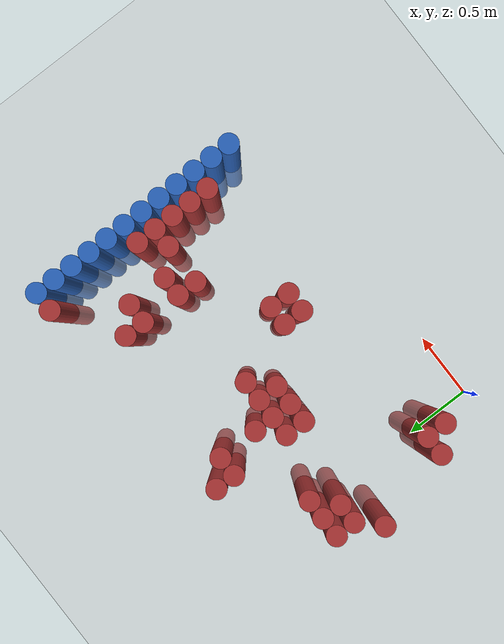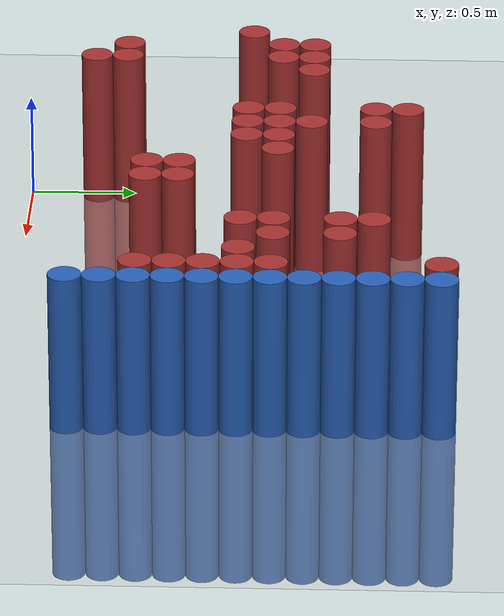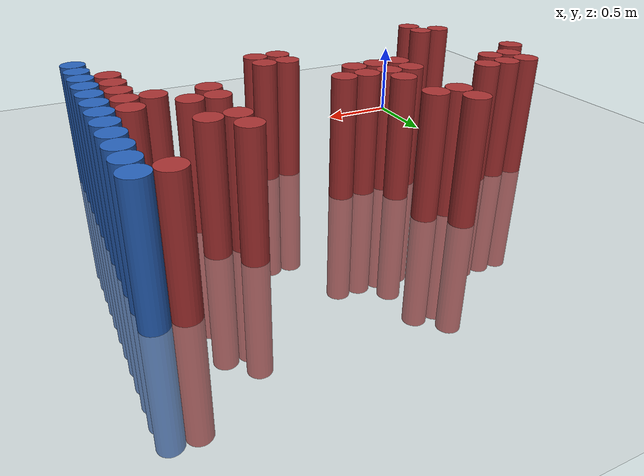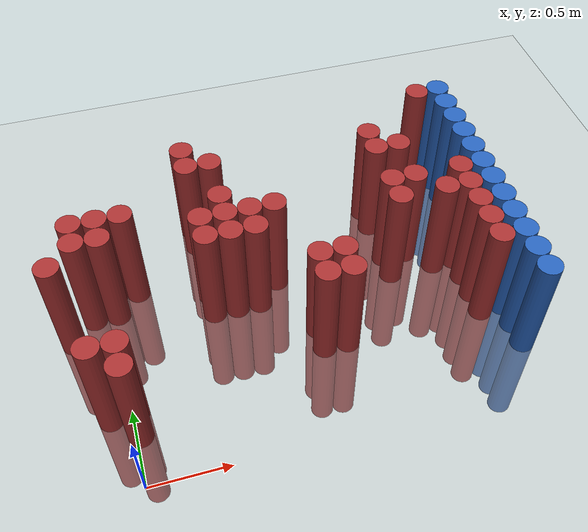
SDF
<sdf version="1.6">
 <world name="default">
  <model name="ground_plane">
   <static>1</static>
   <link name="link">
    <collision name="collision">
     <geometry><plane><normal>0 0 1</normal><size>100 100</size></plane></geometry>
     <surface><friction><ode><mu>100</mu><mu2>50</mu2></ode></friction></surface>
    </collision>
    <visual name="visual">
     <cast_shadows>0</cast_shadows>
     <geometry><plane><normal>0 0 1</normal><size>100 100</size></plane></geometry>
     <material>
      <script><uri>file://media/materials/scripts/gazebo.material</uri><name>Gazebo/Grey</name></script>
     </material>
    </visual>
   </link>
  </model>
  <model name="unit_cylinder_147">
   <static>1</static>
   <pose>-0.275000 1.075000 0.000000 0.000000 0.000000 0.000000</pose>
   <link name="link">
    <inertial>
     <mass>1</mass>
     <inertia><ixx>0.145833</ixx><ixy>0</ixy><ixz>0</ixz><iyy>0.145833</iyy><iyz>0</iyz><izz>0.125</izz></inertia>
    </inertial>
    <collision name="collision">
     <geometry><cylinder><radius>0.075000</radius><length>1.5</length></cylinder></geometry>
    </collision>
    <visual name="visual">
     <geometry><cylinder><radius>0.075000</radius><length>1.5</length></cylinder></geometry>
     <material>
      <ambient>0.648000 0.192000 0.192000 1</ambient>
      <diffuse>0.648000 0.192000 0.192000 1</diffuse>
     </material>
     <material>
      <script><name>Gazebo/Grey</name><uri>file://media/materials/scripts/gazebo.material</uri></script>
     </material>
    </visual>
   </link>
  </model>
  <model name="unit_cylinder_151">
   <static>1</static>
   <pose>-0.125000 0.475000 0.000000 0.000000 0.000000 0.000000</pose>
   <link name="link">
    <inertial>
     <mass>1</mass>
     <inertia><ixx>0.145833</ixx><ixy>0</ixy><ixz>0</ixz><iyy>0.145833</iyy><iyz>0</iyz><izz>0.125</izz></inertia>
    </inertial>
    <collision name="collision">
     <geometry><cylinder><radius>0.075000</radius><length>1.5</length></cylinder></geometry>
    </collision>
    <visual name="visual">
     <geometry><cylinder><radius>0.075000</radius><length>1.5</length></cylinder></geometry>
     <material>
      <ambient>0.648000 0.192000 0.192000 1</ambient>
      <diffuse>0.648000 0.192000 0.192000 1</diffuse>
     </material>
     <material>
      <script><name>Gazebo/Grey</name><uri>file://media/materials/scripts/gazebo.material</uri></script>
     </material>
    </visual>
   </link>
  </model>
  <model name="unit_cylinder_152">
   <static>1</static>
   <pose>-0.125000 1.225000 0.000000 0.000000 0.000000 0.000000</pose>
   <link name="link">
    <inertial>
     <mass>1</mass>
     <inertia><ixx>0.145833</ixx><ixy>0</ixy><ixz>0</ixz><iyy>0.145833</iyy><iyz>0</iyz><izz>0.125</izz></inertia>
    </inertial>
    <collision name="collision">
     <geometry><cylinder><radius>0.075000</radius><length>1.5</length></cylinder></geometry>
    </collision>
    <visual name="visual">
     <geometry><cylinder><radius>0.075000</radius><length>1.5</length></cylinder></geometry>
     <material>
      <ambient>0.648000 0.192000 0.192000 1</ambient>
      <diffuse>0.648000 0.192000 0.192000 1</diffuse>
     </material>
     <material>
      <script><name>Gazebo/Grey</name><uri>file://media/materials/scripts/gazebo.material</uri></script>
     </material>
    </visual>
   </link>
  </model>
  <model name="unit_cylinder_153">
   <static>1</static>
   <pose>-0.125000 1.375000 0.000000 0.000000 0.000000 0.000000</pose>
   <link name="link">
    <inertial>
     <mass>1</mass>
     <inertia><ixx>0.145833</ixx><ixy>0</ixy><ixz>0</ixz><iyy>0.145833</iyy><iyz>0</iyz><izz>0.125</izz></inertia>
    </inertial>
    <collision name="collision">
     <geometry><cylinder><radius>0.075000</radius><length>1.5</length></cylinder></geometry>
    </collision>
    <visual name="visual">
     <geometry><cylinder><radius>0.075000</radius><length>1.5</length></cylinder></geometry>
     <material>
      <ambient>0.648000 0.192000 0.192000 1</ambient>
      <diffuse>0.648000 0.192000 0.192000 1</diffuse>
     </material>
     <material>
      <script><name>Gazebo/Grey</name><uri>file://media/materials/scripts/gazebo.material</uri></script>
     </material>
    </visual>
   </link>
  </model>
  <model name="unit_cylinder_155">
   <static>1</static>
   <pose>0.025000 0.325000 0.000000 0.000000 0.000000 0.000000</pose>
   <link name="link">
    <inertial>
     <mass>1</mass>
     <inertia><ixx>0.145833</ixx><ixy>0</ixy><ixz>0</ixz><iyy>0.145833</iyy><iyz>0</iyz><izz>0.125</izz></inertia>
    </inertial>
    <collision name="collision">
     <geometry><cylinder><radius>0.075000</radius><length>1.5</length></cylinder></geometry>
    </collision>
    <visual name="visual">
     <geometry><cylinder><radius>0.075000</radius><length>1.5</length></cylinder></geometry>
     <material>
      <ambient>0.648000 0.192000 0.192000 1</ambient>
      <diffuse>0.648000 0.192000 0.192000 1</diffuse>
     </material>
     <material>
      <script><name>Gazebo/Grey</name><uri>file://media/materials/scripts/gazebo.material</uri></script>
     </material>
    </visual>
   </link>
  </model>
  <model name="unit_cylinder_156">
   <static>1</static>
   <pose>0.025000 0.475000 0.000000 0.000000 0.000000 0.000000</pose>
   <link name="link">
    <inertial>
     <mass>1</mass>
     <inertia><ixx>0.145833</ixx><ixy>0</ixy><ixz>0</ixz><iyy>0.145833</iyy><iyz>0</iyz><izz>0.125</izz></inertia>
    </inertial>
    <collision name="collision">
     <geometry><cylinder><radius>0.075000</radius><length>1.5</length></cylinder></geometry>
    </collision>
    <visual name="visual">
     <geometry><cylinder><radius>0.075000</radius><length>1.5</length></cylinder></geometry>
     <material>
      <ambient>0.648000 0.192000 0.192000 1</ambient>
      <diffuse>0.648000 0.192000 0.192000 1</diffuse>
     </material>
     <material>
      <script><name>Gazebo/Grey</name><uri>file://media/materials/scripts/gazebo.material</uri></script>
     </material>
    </visual>
   </link>
  </model>
  <model name="unit_cylinder_157">
   <static>1</static>
   <pose>0.025000 1.225000 0.000000 0.000000 0.000000 0.000000</pose>
   <link name="link">
    <inertial>
     <mass>1</mass>
     <inertia><ixx>0.145833</ixx><ixy>0</ixy><ixz>0</ixz><iyy>0.145833</iyy><iyz>0</iyz><izz>0.125</izz></inertia>
    </inertial>
    <collision name="collision">
     <geometry><cylinder><radius>0.075000</radius><length>1.5</length></cylinder></geometry>
    </collision>
    <visual name="visual">
     <geometry><cylinder><radius>0.075000</radius><length>1.5</length></cylinder></geometry>
     <material>
      <ambient>0.648000 0.192000 0.192000 1</ambient>
      <diffuse>0.648000 0.192000 0.192000 1</diffuse>
     </material>
     <material>
      <script><name>Gazebo/Grey</name><uri>file://media/materials/scripts/gazebo.material</uri></script>
     </material>
    </visual>
   </link>
  </model>
  <model name="unit_cylinder_158">
   <static>1</static>
   <pose>0.025000 1.375000 0.000000 0.000000 0.000000 0.000000</pose>
   <link name="link">
    <inertial>
     <mass>1</mass>
     <inertia><ixx>0.145833</ixx><ixy>0</ixy><ixz>0</ixz><iyy>0.145833</iyy><iyz>0</iyz><izz>0.125</izz></inertia>
    </inertial>
    <collision name="collision">
     <geometry><cylinder><radius>0.075000</radius><length>1.5</length></cylinder></geometry>
    </collision>
    <visual name="visual">
     <geometry><cylinder><radius>0.075000</radius><length>1.5</length></cylinder></geometry>
     <material>
      <ambient>0.648000 0.192000 0.192000 1</ambient>
      <diffuse>0.648000 0.192000 0.192000 1</diffuse>
     </material>
     <material>
      <script><name>Gazebo/Grey</name><uri>file://media/materials/scripts/gazebo.material</uri></script>
     </material>
    </visual>
   </link>
  </model>
  <model name="unit_cylinder_159">
   <static>1</static>
   <pose>0.175000 1.375000 0.000000 0.000000 0.000000 0.000000</pose>
   <link name="link">
    <inertial>
     <mass>1</mass>
     <inertia><ixx>0.145833</ixx><ixy>0</ixy><ixz>0</ixz><iyy>0.145833</iyy><iyz>0</iyz><izz>0.125</izz></inertia>
    </inertial>
    <collision name="collision">
     <geometry><cylinder><radius>0.075000</radius><length>1.5</length></cylinder></geometry>
    </collision>
    <visual name="visual">
     <geometry><cylinder><radius>0.075000</radius><length>1.5</length></cylinder></geometry>
     <material>
      <ambient>0.648000 0.192000 0.192000 1</ambient>
      <diffuse>0.648000 0.192000 0.192000 1</diffuse>
     </material>
     <material>
      <script><name>Gazebo/Grey</name><uri>file://media/materials/scripts/gazebo.material</uri></script>
     </material>
    </visual>
   </link>
  </model>
  <model name="unit_cylinder_160">
   <static>1</static>
   <pose>0.625000 1.075000 0.000000 0.000000 0.000000 0.000000</pose>
   <link name="link">
    <inertial>
     <mass>1</mass>
     <inertia><ixx>0.145833</ixx><ixy>0</ixy><ixz>0</ixz><iyy>0.145833</iyy><iyz>0</iyz><izz>0.125</izz></inertia>
    </inertial>
    <collision name="collision">
     <geometry><cylinder><radius>0.075000</radius><length>1.5</length></cylinder></geometry>
    </collision>
    <visual name="visual">
     <geometry><cylinder><radius>0.075000</radius><length>1.5</length></cylinder></geometry>
     <material>
      <ambient>0.648000 0.192000 0.192000 1</ambient>
      <diffuse>0.648000 0.192000 0.192000 1</diffuse>
     </material>
     <material>
      <script><name>Gazebo/Grey</name><uri>file://media/materials/scripts/gazebo.material</uri></script>
     </material>
    </visual>
   </link>
  </model>
  <model name="unit_cylinder_161">
   <static>1</static>
   <pose>0.625000 1.225000 0.000000 0.000000 0.000000 0.000000</pose>
   <link name="link">
    <inertial>
     <mass>1</mass>
     <inertia><ixx>0.145833</ixx><ixy>0</ixy><ixz>0</ixz><iyy>0.145833</iyy><iyz>0</iyz><izz>0.125</izz></inertia>
    </inertial>
    <collision name="collision">
     <geometry><cylinder><radius>0.075000</radius><length>1.5</length></cylinder></geometry>
    </collision>
    <visual name="visual">
     <geometry><cylinder><radius>0.075000</radius><length>1.5</length></cylinder></geometry>
     <material>
      <ambient>0.648000 0.192000 0.192000 1</ambient>
      <diffuse>0.648000 0.192000 0.192000 1</diffuse>
     </material>
     <material>
      <script><name>Gazebo/Grey</name><uri>file://media/materials/scripts/gazebo.material</uri></script>
     </material>
    </visual>
   </link>
  </model>
  <model name="unit_cylinder_162">
   <static>1</static>
   <pose>0.625000 1.675000 0.000000 0.000000 0.000000 0.000000</pose>
   <link name="link">
    <inertial>
     <mass>1</mass>
     <inertia><ixx>0.145833</ixx><ixy>0</ixy><ixz>0</ixz><iyy>0.145833</iyy><iyz>0</iyz><izz>0.125</izz></inertia>
    </inertial>
    <collision name="collision">
     <geometry><cylinder><radius>0.075000</radius><length>1.5</length></cylinder></geometry>
    </collision>
    <visual name="visual">
     <geometry><cylinder><radius>0.075000</radius><length>1.5</length></cylinder></geometry>
     <material>
      <ambient>0.648000 0.192000 0.192000 1</ambient>
      <diffuse>0.648000 0.192000 0.192000 1</diffuse>
     </material>
     <material>
      <script><name>Gazebo/Grey</name><uri>file://media/materials/scripts/gazebo.material</uri></script>
     </material>
    </visual>
   </link>
  </model>
  <model name="unit_cylinder_163">
   <static>1</static>
   <pose>0.625000 1.825000 0.000000 0.000000 0.000000 0.000000</pose>
   <link name="link">
    <inertial>
     <mass>1</mass>
     <inertia><ixx>0.145833</ixx><ixy>0</ixy><ixz>0</ixz><iyy>0.145833</iyy><iyz>0</iyz><izz>0.125</izz></inertia>
    </inertial>
    <collision name="collision">
     <geometry><cylinder><radius>0.075000</radius><length>1.5</length></cylinder></geometry>
    </collision>
    <visual name="visual">
     <geometry><cylinder><radius>0.075000</radius><length>1.5</length></cylinder></geometry>
     <material>
      <ambient>0.648000 0.192000 0.192000 1</ambient>
      <diffuse>0.648000 0.192000 0.192000 1</diffuse>
     </material>
     <material>
      <script><name>Gazebo/Grey</name><uri>file://media/materials/scripts/gazebo.material</uri></script>
     </material>
    </visual>
   </link>
  </model>
  <model name="unit_cylinder_166">
   <static>1</static>
   <pose>0.775000 1.075000 0.000000 0.000000 0.000000 0.000000</pose>
   <link name="link">
    <inertial>
     <mass>1</mass>
     <inertia><ixx>0.145833</ixx><ixy>0</ixy><ixz>0</ixz><iyy>0.145833</iyy><iyz>0</iyz><izz>0.125</izz></inertia>
    </inertial>
    <collision name="collision">
     <geometry><cylinder><radius>0.075000</radius><length>1.5</length></cylinder></geometry>
    </collision>
    <visual name="visual">
     <geometry><cylinder><radius>0.075000</radius><length>1.5</length></cylinder></geometry>
     <material>
      <ambient>0.648000 0.192000 0.192000 1</ambient>
      <diffuse>0.648000 0.192000 0.192000 1</diffuse>
     </material>
     <material>
      <script><name>Gazebo/Grey</name><uri>file://media/materials/scripts/gazebo.material</uri></script>
     </material>
    </visual>
   </link>
  </model>
  <model name="unit_cylinder_167">
   <static>1</static>
   <pose>0.775000 1.225000 0.000000 0.000000 0.000000 0.000000</pose>
   <link name="link">
    <inertial>
     <mass>1</mass>
     <inertia><ixx>0.145833</ixx><ixy>0</ixy><ixz>0</ixz><iyy>0.145833</iyy><iyz>0</iyz><izz>0.125</izz></inertia>
    </inertial>
    <collision name="collision">
     <geometry><cylinder><radius>0.075000</radius><length>1.5</length></cylinder></geometry>
    </collision>
    <visual name="visual">
     <geometry><cylinder><radius>0.075000</radius><length>1.5</length></cylinder></geometry>
     <material>
      <ambient>0.648000 0.192000 0.192000 1</ambient>
      <diffuse>0.648000 0.192000 0.192000 1</diffuse>
     </material>
     <material>
      <script><name>Gazebo/Grey</name><uri>file://media/materials/scripts/gazebo.material</uri></script>
     </material>
    </visual>
   </link>
  </model>
  <model name="unit_cylinder_168">
   <static>1</static>
   <pose>0.775000 1.375000 0.000000 0.000000 0.000000 0.000000</pose>
   <link name="link">
    <inertial>
     <mass>1</mass>
     <inertia><ixx>0.145833</ixx><ixy>0</ixy><ixz>0</ixz><iyy>0.145833</iyy><iyz>0</iyz><izz>0.125</izz></inertia>
    </inertial>
    <collision name="collision">
     <geometry><cylinder><radius>0.075000</radius><length>1.5</length></cylinder></geometry>
    </collision>
    <visual name="visual">
     <geometry><cylinder><radius>0.075000</radius><length>1.5</length></cylinder></geometry>
     <material>
      <ambient>0.648000 0.192000 0.192000 1</ambient>
      <diffuse>0.648000 0.192000 0.192000 1</diffuse>
     </material>
     <material>
      <script><name>Gazebo/Grey</name><uri>file://media/materials/scripts/gazebo.material</uri></script>
     </material>
    </visual>
   </link>
  </model>
  <model name="unit_cylinder_169">
   <static>1</static>
   <pose>0.775000 1.675000 0.000000 0.000000 0.000000 0.000000</pose>
   <link name="link">
    <inertial>
     <mass>1</mass>
     <inertia><ixx>0.145833</ixx><ixy>0</ixy><ixz>0</ixz><iyy>0.145833</iyy><iyz>0</iyz><izz>0.125</izz></inertia>
    </inertial>
    <collision name="collision">
     <geometry><cylinder><radius>0.075000</radius><length>1.5</length></cylinder></geometry>
    </collision>
    <visual name="visual">
     <geometry><cylinder><radius>0.075000</radius><length>1.5</length></cylinder></geometry>
     <material>
      <ambient>0.648000 0.192000 0.192000 1</ambient>
      <diffuse>0.648000 0.192000 0.192000 1</diffuse>
     </material>
     <material>
      <script><name>Gazebo/Grey</name><uri>file://media/materials/scripts/gazebo.material</uri></script>
     </material>
    </visual>
   </link>
  </model>
  <model name="unit_cylinder_174">
   <static>1</static>
   <pose>0.925000 1.075000 0.000000 0.000000 0.000000 0.000000</pose>
   <link name="link">
    <inertial>
     <mass>1</mass>
     <inertia><ixx>0.145833</ixx><ixy>0</ixy><ixz>0</ixz><iyy>0.145833</iyy><iyz>0</iyz><izz>0.125</izz></inertia>
    </inertial>
    <collision name="collision">
     <geometry><cylinder><radius>0.075000</radius><length>1.5</length></cylinder></geometry>
    </collision>
    <visual name="visual">
     <geometry><cylinder><radius>0.075000</radius><length>1.5</length></cylinder></geometry>
     <material>
      <ambient>0.648000 0.192000 0.192000 1</ambient>
      <diffuse>0.648000 0.192000 0.192000 1</diffuse>
     </material>
     <material>
      <script><name>Gazebo/Grey</name><uri>file://media/materials/scripts/gazebo.material</uri></script>
     </material>
    </visual>
   </link>
  </model>
  <model name="unit_cylinder_175">
   <static>1</static>
   <pose>0.925000 1.225000 0.000000 0.000000 0.000000 0.000000</pose>
   <link name="link">
    <inertial>
     <mass>1</mass>
     <inertia><ixx>0.145833</ixx><ixy>0</ixy><ixz>0</ixz><iyy>0.145833</iyy><iyz>0</iyz><izz>0.125</izz></inertia>
    </inertial>
    <collision name="collision">
     <geometry><cylinder><radius>0.075000</radius><length>1.5</length></cylinder></geometry>
    </collision>
    <visual name="visual">
     <geometry><cylinder><radius>0.075000</radius><length>1.5</length></cylinder></geometry>
     <material>
      <ambient>0.648000 0.192000 0.192000 1</ambient>
      <diffuse>0.648000 0.192000 0.192000 1</diffuse>
     </material>
     <material>
      <script><name>Gazebo/Grey</name><uri>file://media/materials/scripts/gazebo.material</uri></script>
     </material>
    </visual>
   </link>
  </model>
  <model name="unit_cylinder_180">
   <static>1</static>
   <pose>1.075000 1.225000 0.000000 0.000000 0.000000 0.000000</pose>
   <link name="link">
    <inertial>
     <mass>1</mass>
     <inertia><ixx>0.145833</ixx><ixy>0</ixy><ixz>0</ixz><iyy>0.145833</iyy><iyz>0</iyz><izz>0.125</izz></inertia>
    </inertial>
    <collision name="collision">
     <geometry><cylinder><radius>0.075000</radius><length>1.5</length></cylinder></geometry>
    </collision>
    <visual name="visual">
     <geometry><cylinder><radius>0.075000</radius><length>1.5</length></cylinder></geometry>
     <material>
      <ambient>0.648000 0.192000 0.192000 1</ambient>
      <diffuse>0.648000 0.192000 0.192000 1</diffuse>
     </material>
     <material>
      <script><name>Gazebo/Grey</name><uri>file://media/materials/scripts/gazebo.material</uri></script>
     </material>
    </visual>
   </link>
  </model>
  <model name="unit_cylinder_184">
   <static>1</static>
   <pose>1.225000 0.625000 0.000000 0.000000 0.000000 0.000000</pose>
   <link name="link">
    <inertial>
     <mass>1</mass>
     <inertia><ixx>0.145833</ixx><ixy>0</ixy><ixz>0</ixz><iyy>0.145833</iyy><iyz>0</iyz><izz>0.125</izz></inertia>
    </inertial>
    <collision name="collision">
     <geometry><cylinder><radius>0.075000</radius><length>1.5</length></cylinder></geometry>
    </collision>
    <visual name="visual">
     <geometry><cylinder><radius>0.075000</radius><length>1.5</length></cylinder></geometry>
     <material>
      <ambient>0.648000 0.192000 0.192000 1</ambient>
      <diffuse>0.648000 0.192000 0.192000 1</diffuse>
     </material>
     <material>
      <script><name>Gazebo/Grey</name><uri>file://media/materials/scripts/gazebo.material</uri></script>
     </material>
    </visual>
   </link>
  </model>
  <model name="unit_cylinder_185">
   <static>1</static>
   <pose>1.225000 0.775000 0.000000 0.000000 0.000000 0.000000</pose>
   <link name="link">
    <inertial>
     <mass>1</mass>
     <inertia><ixx>0.145833</ixx><ixy>0</ixy><ixz>0</ixz><iyy>0.145833</iyy><iyz>0</iyz><izz>0.125</izz></inertia>
    </inertial>
    <collision name="collision">
     <geometry><cylinder><radius>0.075000</radius><length>1.5</length></cylinder></geometry>
    </collision>
    <visual name="visual">
     <geometry><cylinder><radius>0.075000</radius><length>1.5</length></cylinder></geometry>
     <material>
      <ambient>0.648000 0.192000 0.192000 1</ambient>
      <diffuse>0.648000 0.192000 0.192000 1</diffuse>
     </material>
     <material>
      <script><name>Gazebo/Grey</name><uri>file://media/materials/scripts/gazebo.material</uri></script>
     </material>
    </visual>
   </link>
  </model>
  <model name="unit_cylinder_186">
   <static>1</static>
   <pose>1.375000 0.625000 0.000000 0.000000 0.000000 0.000000</pose>
   <link name="link">
    <inertial>
     <mass>1</mass>
     <inertia><ixx>0.145833</ixx><ixy>0</ixy><ixz>0</ixz><iyy>0.145833</iyy><iyz>0</iyz><izz>0.125</izz></inertia>
    </inertial>
    <collision name="collision">
     <geometry><cylinder><radius>0.075000</radius><length>1.5</length></cylinder></geometry>
    </collision>
    <visual name="visual">
     <geometry><cylinder><radius>0.075000</radius><length>1.5</length></cylinder></geometry>
     <material>
      <ambient>0.648000 0.192000 0.192000 1</ambient>
      <diffuse>0.648000 0.192000 0.192000 1</diffuse>
     </material>
     <material>
      <script><name>Gazebo/Grey</name><uri>file://media/materials/scripts/gazebo.material</uri></script>
     </material>
    </visual>
   </link>
  </model>
  <model name="unit_cylinder_187">
   <static>1</static>
   <pose>1.375000 0.775000 0.000000 0.000000 0.000000 0.000000</pose>
   <link name="link">
    <inertial>
     <mass>1</mass>
     <inertia><ixx>0.145833</ixx><ixy>0</ixy><ixz>0</ixz><iyy>0.145833</iyy><iyz>0</iyz><izz>0.125</izz></inertia>
    </inertial>
    <collision name="collision">
     <geometry><cylinder><radius>0.075000</radius><length>1.5</length></cylinder></geometry>
    </collision>
    <visual name="visual">
     <geometry><cylinder><radius>0.075000</radius><length>1.5</length></cylinder></geometry>
     <material>
      <ambient>0.648000 0.192000 0.192000 1</ambient>
      <diffuse>0.648000 0.192000 0.192000 1</diffuse>
     </material>
     <material>
      <script><name>Gazebo/Grey</name><uri>file://media/materials/scripts/gazebo.material</uri></script>
     </material>
    </visual>
   </link>
  </model>
  <model name="unit_cylinder_188">
   <static>1</static>
   <pose>1.825000 1.075000 0.000000 0.000000 0.000000 0.000000</pose>
   <link name="link">
    <inertial>
     <mass>1</mass>
     <inertia><ixx>0.145833</ixx><ixy>0</ixy><ixz>0</ixz><iyy>0.145833</iyy><iyz>0</iyz><izz>0.125</izz></inertia>
    </inertial>
    <collision name="collision">
     <geometry><cylinder><radius>0.075000</radius><length>1.5</length></cylinder></geometry>
    </collision>
    <visual name="visual">
     <geometry><cylinder><radius>0.075000</radius><length>1.5</length></cylinder></geometry>
     <material>
      <ambient>0.648000 0.192000 0.192000 1</ambient>
      <diffuse>0.648000 0.192000 0.192000 1</diffuse>
     </material>
     <material>
      <script><name>Gazebo/Grey</name><uri>file://media/materials/scripts/gazebo.material</uri></script>
     </material>
    </visual>
   </link>
  </model>
  <model name="unit_cylinder_189">
   <static>1</static>
   <pose>1.825000 1.225000 0.000000 0.000000 0.000000 0.000000</pose>
   <link name="link">
    <inertial>
     <mass>1</mass>
     <inertia><ixx>0.145833</ixx><ixy>0</ixy><ixz>0</ixz><iyy>0.145833</iyy><iyz>0</iyz><izz>0.125</izz></inertia>
    </inertial>
    <collision name="collision">
     <geometry><cylinder><radius>0.075000</radius><length>1.5</length></cylinder></geometry>
    </collision>
    <visual name="visual">
     <geometry><cylinder><radius>0.075000</radius><length>1.5</length></cylinder></geometry>
     <material>
      <ambient>0.648000 0.192000 0.192000 1</ambient>
      <diffuse>0.648000 0.192000 0.192000 1</diffuse>
     </material>
     <material>
      <script><name>Gazebo/Grey</name><uri>file://media/materials/scripts/gazebo.material</uri></script>
     </material>
    </visual>
   </link>
  </model>
  <model name="unit_cylinder_190">
   <static>1</static>
   <pose>1.825000 1.525000 0.000000 0.000000 0.000000 0.000000</pose>
   <link name="link">
    <inertial>
     <mass>1</mass>
     <inertia><ixx>0.145833</ixx><ixy>0</ixy><ixz>0</ixz><iyy>0.145833</iyy><iyz>0</iyz><izz>0.125</izz></inertia>
    </inertial>
    <collision name="collision">
     <geometry><cylinder><radius>0.075000</radius><length>1.5</length></cylinder></geometry>
    </collision>
    <visual name="visual">
     <geometry><cylinder><radius>0.075000</radius><length>1.5</length></cylinder></geometry>
     <material>
      <ambient>0.648000 0.192000 0.192000 1</ambient>
      <diffuse>0.648000 0.192000 0.192000 1</diffuse>
     </material>
     <material>
      <script><name>Gazebo/Grey</name><uri>file://media/materials/scripts/gazebo.material</uri></script>
     </material>
    </visual>
   </link>
  </model>
  <model name="unit_cylinder_191">
   <static>1</static>
   <pose>1.825000 1.675000 0.000000 0.000000 0.000000 0.000000</pose>
   <link name="link">
    <inertial>
     <mass>1</mass>
     <inertia><ixx>0.145833</ixx><ixy>0</ixy><ixz>0</ixz><iyy>0.145833</iyy><iyz>0</iyz><izz>0.125</izz></inertia>
    </inertial>
    <collision name="collision">
     <geometry><cylinder><radius>0.075000</radius><length>1.5</length></cylinder></geometry>
    </collision>
    <visual name="visual">
     <geometry><cylinder><radius>0.075000</radius><length>1.5</length></cylinder></geometry>
     <material>
      <ambient>0.648000 0.192000 0.192000 1</ambient>
      <diffuse>0.648000 0.192000 0.192000 1</diffuse>
     </material>
     <material>
      <script><name>Gazebo/Grey</name><uri>file://media/materials/scripts/gazebo.material</uri></script>
     </material>
    </visual>
   </link>
  </model>
  <model name="unit_cylinder_192">
   <static>1</static>
   <pose>1.975000 1.225000 0.000000 0.000000 0.000000 0.000000</pose>
   <link name="link">
    <inertial>
     <mass>1</mass>
     <inertia><ixx>0.145833</ixx><ixy>0</ixy><ixz>0</ixz><iyy>0.145833</iyy><iyz>0</iyz><izz>0.125</izz></inertia>
    </inertial>
    <collision name="collision">
     <geometry><cylinder><radius>0.075000</radius><length>1.5</length></cylinder></geometry>
    </collision>
    <visual name="visual">
     <geometry><cylinder><radius>0.075000</radius><length>1.5</length></cylinder></geometry>
     <material>
      <ambient>0.648000 0.192000 0.192000 1</ambient>
      <diffuse>0.648000 0.192000 0.192000 1</diffuse>
     </material>
     <material>
      <script><name>Gazebo/Grey</name><uri>file://media/materials/scripts/gazebo.material</uri></script>
     </material>
    </visual>
   </link>
  </model>
  <model name="unit_cylinder_193">
   <static>1</static>
   <pose>1.975000 1.525000 0.000000 0.000000 0.000000 0.000000</pose>
   <link name="link">
    <inertial>
     <mass>1</mass>
     <inertia><ixx>0.145833</ixx><ixy>0</ixy><ixz>0</ixz><iyy>0.145833</iyy><iyz>0</iyz><izz>0.125</izz></inertia>
    </inertial>
    <collision name="collision">
     <geometry><cylinder><radius>0.075000</radius><length>1.5</length></cylinder></geometry>
    </collision>
    <visual name="visual">
     <geometry><cylinder><radius>0.075000</radius><length>1.5</length></cylinder></geometry>
     <material>
      <ambient>0.648000 0.192000 0.192000 1</ambient>
      <diffuse>0.648000 0.192000 0.192000 1</diffuse>
     </material>
     <material>
      <script><name>Gazebo/Grey</name><uri>file://media/materials/scripts/gazebo.material</uri></script>
     </material>
    </visual>
   </link>
  </model>
  <model name="unit_cylinder_196">
   <static>1</static>
   <pose>2.125000 1.075000 0.000000 0.000000 0.000000 0.000000</pose>
   <link name="link">
    <inertial>
     <mass>1</mass>
     <inertia><ixx>0.145833</ixx><ixy>0</ixy><ixz>0</ixz><iyy>0.145833</iyy><iyz>0</iyz><izz>0.125</izz></inertia>
    </inertial>
    <collision name="collision">
     <geometry><cylinder><radius>0.075000</radius><length>1.5</length></cylinder></geometry>
    </collision>
    <visual name="visual">
     <geometry><cylinder><radius>0.075000</radius><length>1.5</length></cylinder></geometry>
     <material>
      <ambient>0.648000 0.192000 0.192000 1</ambient>
      <diffuse>0.648000 0.192000 0.192000 1</diffuse>
     </material>
     <material>
      <script><name>Gazebo/Grey</name><uri>file://media/materials/scripts/gazebo.material</uri></script>
     </material>
    </visual>
   </link>
  </model>
  <model name="unit_cylinder_204">
   <static>1</static>
   <pose>2.275000 0.625000 0.000000 0.000000 0.000000 0.000000</pose>
   <link name="link">
    <inertial>
     <mass>1</mass>
     <inertia><ixx>0.145833</ixx><ixy>0</ixy><ixz>0</ixz><iyy>0.145833</iyy><iyz>0</iyz><izz>0.125</izz></inertia>
    </inertial>
    <collision name="collision">
     <geometry><cylinder><radius>0.075000</radius><length>1.5</length></cylinder></geometry>
    </collision>
    <visual name="visual">
     <geometry><cylinder><radius>0.075000</radius><length>1.5</length></cylinder></geometry>
     <material>
      <ambient>0.648000 0.192000 0.192000 1</ambient>
      <diffuse>0.648000 0.192000 0.192000 1</diffuse>
     </material>
     <material>
      <script><name>Gazebo/Grey</name><uri>file://media/materials/scripts/gazebo.material</uri></script>
     </material>
    </visual>
   </link>
  </model>
  <model name="unit_cylinder_205">
   <static>1</static>
   <pose>2.275000 0.775000 0.000000 0.000000 0.000000 0.000000</pose>
   <link name="link">
    <inertial>
     <mass>1</mass>
     <inertia><ixx>0.145833</ixx><ixy>0</ixy><ixz>0</ixz><iyy>0.145833</iyy><iyz>0</iyz><izz>0.125</izz></inertia>
    </inertial>
    <collision name="collision">
     <geometry><cylinder><radius>0.075000</radius><length>1.5</length></cylinder></geometry>
    </collision>
    <visual name="visual">
     <geometry><cylinder><radius>0.075000</radius><length>1.5</length></cylinder></geometry>
     <material>
      <ambient>0.648000 0.192000 0.192000 1</ambient>
      <diffuse>0.648000 0.192000 0.192000 1</diffuse>
     </material>
     <material>
      <script><name>Gazebo/Grey</name><uri>file://media/materials/scripts/gazebo.material</uri></script>
     </material>
    </visual>
   </link>
  </model>
  <model name="unit_cylinder_206">
   <static>1</static>
   <pose>2.275000 0.925000 0.000000 0.000000 0.000000 0.000000</pose>
   <link name="link">
    <inertial>
     <mass>1</mass>
     <inertia><ixx>0.145833</ixx><ixy>0</ixy><ixz>0</ixz><iyy>0.145833</iyy><iyz>0</iyz><izz>0.125</izz></inertia>
    </inertial>
    <collision name="collision">
     <geometry><cylinder><radius>0.075000</radius><length>1.5</length></cylinder></geometry>
    </collision>
    <visual name="visual">
     <geometry><cylinder><radius>0.075000</radius><length>1.5</length></cylinder></geometry>
     <material>
      <ambient>0.648000 0.192000 0.192000 1</ambient>
      <diffuse>0.648000 0.192000 0.192000 1</diffuse>
     </material>
     <material>
      <script><name>Gazebo/Grey</name><uri>file://media/materials/scripts/gazebo.material</uri></script>
     </material>
    </visual>
   </link>
  </model>
  <model name="unit_cylinder_207">
   <static>1</static>
   <pose>2.275000 1.075000 0.000000 0.000000 0.000000 0.000000</pose>
   <link name="link">
    <inertial>
     <mass>1</mass>
     <inertia><ixx>0.145833</ixx><ixy>0</ixy><ixz>0</ixz><iyy>0.145833</iyy><iyz>0</iyz><izz>0.125</izz></inertia>
    </inertial>
    <collision name="collision">
     <geometry><cylinder><radius>0.075000</radius><length>1.5</length></cylinder></geometry>
    </collision>
    <visual name="visual">
     <geometry><cylinder><radius>0.075000</radius><length>1.5</length></cylinder></geometry>
     <material>
      <ambient>0.648000 0.192000 0.192000 1</ambient>
      <diffuse>0.648000 0.192000 0.192000 1</diffuse>
     </material>
     <material>
      <script><name>Gazebo/Grey</name><uri>file://media/materials/scripts/gazebo.material</uri></script>
     </material>
    </visual>
   </link>
  </model>
  <model name="unit_cylinder_208">
   <static>1</static>
   <pose>2.275000 1.225000 0.000000 0.000000 0.000000 0.000000</pose>
   <link name="link">
    <inertial>
     <mass>1</mass>
     <inertia><ixx>0.145833</ixx><ixy>0</ixy><ixz>0</ixz><iyy>0.145833</iyy><iyz>0</iyz><izz>0.125</izz></inertia>
    </inertial>
    <collision name="collision">
     <geometry><cylinder><radius>0.075000</radius><length>1.5</length></cylinder></geometry>
    </collision>
    <visual name="visual">
     <geometry><cylinder><radius>0.075000</radius><length>1.5</length></cylinder></geometry>
     <material>
      <ambient>0.648000 0.192000 0.192000 1</ambient>
      <diffuse>0.648000 0.192000 0.192000 1</diffuse>
     </material>
     <material>
      <script><name>Gazebo/Grey</name><uri>file://media/materials/scripts/gazebo.material</uri></script>
     </material>
    </visual>
   </link>
  </model>
  <model name="unit_cylinder_209">
   <static>1</static>
   <pose>2.275000 1.975000 0.000000 0.000000 0.000000 0.000000</pose>
   <link name="link">
    <inertial>
     <mass>1</mass>
     <inertia><ixx>0.145833</ixx><ixy>0</ixy><ixz>0</ixz><iyy>0.145833</iyy><iyz>0</iyz><izz>0.125</izz></inertia>
    </inertial>
    <collision name="collision">
     <geometry><cylinder><radius>0.075000</radius><length>1.5</length></cylinder></geometry>
    </collision>
    <visual name="visual">
     <geometry><cylinder><radius>0.075000</radius><length>1.5</length></cylinder></geometry>
     <material>
      <ambient>0.648000 0.192000 0.192000 1</ambient>
      <diffuse>0.648000 0.192000 0.192000 1</diffuse>
     </material>
     <material>
      <script><name>Gazebo/Grey</name><uri>file://media/materials/scripts/gazebo.material</uri></script>
     </material>
    </visual>
   </link>
  </model>
  <model name="unit_cylinder_218">
   <static>1</static>
   <pose>2.425000 0.325000 0.000000 0.000000 0.000000 0.000000</pose>
   <link name="link">
    <inertial>
     <mass>1</mass>
     <inertia><ixx>0.145833</ixx><ixy>0</ixy><ixz>0</ixz><iyy>0.145833</iyy><iyz>0</iyz><izz>0.125</izz></inertia>
    </inertial>
    <collision name="collision">
     <geometry><cylinder><radius>0.075000</radius><length>1.5</length></cylinder></geometry>
    </collision>
    <visual name="visual">
     <geometry><cylinder><radius>0.075000</radius><length>1.5</length></cylinder></geometry>
     <material>
      <ambient>0.152000 0.379000 0.720000 1</ambient>
      <diffuse>0.152000 0.379000 0.720000 1</diffuse>
     </material>
     <material>
      <script><name>Gazebo/Grey</name><uri>file://media/materials/scripts/gazebo.material</uri></script>
     </material>
    </visual>
   </link>
  </model>
  <model name="unit_cylinder_219">
   <static>1</static>
   <pose>2.425000 0.475000 0.000000 0.000000 0.000000 0.000000</pose>
   <link name="link">
    <inertial>
     <mass>1</mass>
     <inertia><ixx>0.145833</ixx><ixy>0</ixy><ixz>0</ixz><iyy>0.145833</iyy><iyz>0</iyz><izz>0.125</izz></inertia>
    </inertial>
    <collision name="collision">
     <geometry><cylinder><radius>0.075000</radius><length>1.5</length></cylinder></geometry>
    </collision>
    <visual name="visual">
     <geometry><cylinder><radius>0.075000</radius><length>1.5</length></cylinder></geometry>
     <material>
      <ambient>0.152000 0.379000 0.720000 1</ambient>
      <diffuse>0.152000 0.379000 0.720000 1</diffuse>
     </material>
     <material>
      <script><name>Gazebo/Grey</name><uri>file://media/materials/scripts/gazebo.material</uri></script>
     </material>
    </visual>
   </link>
  </model>
  <model name="unit_cylinder_220">
   <static>1</static>
   <pose>2.425000 0.625000 0.000000 0.000000 0.000000 0.000000</pose>
   <link name="link">
    <inertial>
     <mass>1</mass>
     <inertia><ixx>0.145833</ixx><ixy>0</ixy><ixz>0</ixz><iyy>0.145833</iyy><iyz>0</iyz><izz>0.125</izz></inertia>
    </inertial>
    <collision name="collision">
     <geometry><cylinder><radius>0.075000</radius><length>1.5</length></cylinder></geometry>
    </collision>
    <visual name="visual">
     <geometry><cylinder><radius>0.075000</radius><length>1.5</length></cylinder></geometry>
     <material>
      <ambient>0.152000 0.379000 0.720000 1</ambient>
      <diffuse>0.152000 0.379000 0.720000 1</diffuse>
     </material>
     <material>
      <script><name>Gazebo/Grey</name><uri>file://media/materials/scripts/gazebo.material</uri></script>
     </material>
    </visual>
   </link>
  </model>
  <model name="unit_cylinder_221">
   <static>1</static>
   <pose>2.425000 0.775000 0.000000 0.000000 0.000000 0.000000</pose>
   <link name="link">
    <inertial>
     <mass>1</mass>
     <inertia><ixx>0.145833</ixx><ixy>0</ixy><ixz>0</ixz><iyy>0.145833</iyy><iyz>0</iyz><izz>0.125</izz></inertia>
    </inertial>
    <collision name="collision">
     <geometry><cylinder><radius>0.075000</radius><length>1.5</length></cylinder></geometry>
    </collision>
    <visual name="visual">
     <geometry><cylinder><radius>0.075000</radius><length>1.5</length></cylinder></geometry>
     <material>
      <ambient>0.152000 0.379000 0.720000 1</ambient>
      <diffuse>0.152000 0.379000 0.720000 1</diffuse>
     </material>
     <material>
      <script><name>Gazebo/Grey</name><uri>file://media/materials/scripts/gazebo.material</uri></script>
     </material>
    </visual>
   </link>
  </model>
  <model name="unit_cylinder_222">
   <static>1</static>
   <pose>2.425000 0.925000 0.000000 0.000000 0.000000 0.000000</pose>
   <link name="link">
    <inertial>
     <mass>1</mass>
     <inertia><ixx>0.145833</ixx><ixy>0</ixy><ixz>0</ixz><iyy>0.145833</iyy><iyz>0</iyz><izz>0.125</izz></inertia>
    </inertial>
    <collision name="collision">
     <geometry><cylinder><radius>0.075000</radius><length>1.5</length></cylinder></geometry>
    </collision>
    <visual name="visual">
     <geometry><cylinder><radius>0.075000</radius><length>1.5</length></cylinder></geometry>
     <material>
      <ambient>0.152000 0.379000 0.720000 1</ambient>
      <diffuse>0.152000 0.379000 0.720000 1</diffuse>
     </material>
     <material>
      <script><name>Gazebo/Grey</name><uri>file://media/materials/scripts/gazebo.material</uri></script>
     </material>
    </visual>
   </link>
  </model>
  <model name="unit_cylinder_223">
   <static>1</static>
   <pose>2.425000 1.075000 0.000000 0.000000 0.000000 0.000000</pose>
   <link name="link">
    <inertial>
     <mass>1</mass>
     <inertia><ixx>0.145833</ixx><ixy>0</ixy><ixz>0</ixz><iyy>0.145833</iyy><iyz>0</iyz><izz>0.125</izz></inertia>
    </inertial>
    <collision name="collision">
     <geometry><cylinder><radius>0.075000</radius><length>1.5</length></cylinder></geometry>
    </collision>
    <visual name="visual">
     <geometry><cylinder><radius>0.075000</radius><length>1.5</length></cylinder></geometry>
     <material>
      <ambient>0.152000 0.379000 0.720000 1</ambient>
      <diffuse>0.152000 0.379000 0.720000 1</diffuse>
     </material>
     <material>
      <script><name>Gazebo/Grey</name><uri>file://media/materials/scripts/gazebo.material</uri></script>
     </material>
    </visual>
   </link>
  </model>
  <model name="unit_cylinder_224">
   <static>1</static>
   <pose>2.425000 1.225000 0.000000 0.000000 0.000000 0.000000</pose>
   <link name="link">
    <inertial>
     <mass>1</mass>
     <inertia><ixx>0.145833</ixx><ixy>0</ixy><ixz>0</ixz><iyy>0.145833</iyy><iyz>0</iyz><izz>0.125</izz></inertia>
    </inertial>
    <collision name="collision">
     <geometry><cylinder><radius>0.075000</radius><length>1.5</length></cylinder></geometry>
    </collision>
    <visual name="visual">
     <geometry><cylinder><radius>0.075000</radius><length>1.5</length></cylinder></geometry>
     <material>
      <ambient>0.152000 0.379000 0.720000 1</ambient>
      <diffuse>0.152000 0.379000 0.720000 1</diffuse>
     </material>
     <material>
      <script><name>Gazebo/Grey</name><uri>file://media/materials/scripts/gazebo.material</uri></script>
     </material>
    </visual>
   </link>
  </model>
  <model name="unit_cylinder_225">
   <static>1</static>
   <pose>2.425000 1.375000 0.000000 0.000000 0.000000 0.000000</pose>
   <link name="link">
    <inertial>
     <mass>1</mass>
     <inertia><ixx>0.145833</ixx><ixy>0</ixy><ixz>0</ixz><iyy>0.145833</iyy><iyz>0</iyz><izz>0.125</izz></inertia>
    </inertial>
    <collision name="collision">
     <geometry><cylinder><radius>0.075000</radius><length>1.5</length></cylinder></geometry>
    </collision>
    <visual name="visual">
     <geometry><cylinder><radius>0.075000</radius><length>1.5</length></cylinder></geometry>
     <material>
      <ambient>0.152000 0.379000 0.720000 1</ambient>
      <diffuse>0.152000 0.379000 0.720000 1</diffuse>
     </material>
     <material>
      <script><name>Gazebo/Grey</name><uri>file://media/materials/scripts/gazebo.material</uri></script>
     </material>
    </visual>
   </link>
  </model>
  <model name="unit_cylinder_226">
   <static>1</static>
   <pose>2.425000 1.525000 0.000000 0.000000 0.000000 0.000000</pose>
   <link name="link">
    <inertial>
     <mass>1</mass>
     <inertia><ixx>0.145833</ixx><ixy>0</ixy><ixz>0</ixz><iyy>0.145833</iyy><iyz>0</iyz><izz>0.125</izz></inertia>
    </inertial>
    <collision name="collision">
     <geometry><cylinder><radius>0.075000</radius><length>1.5</length></cylinder></geometry>
    </collision>
    <visual name="visual">
     <geometry><cylinder><radius>0.075000</radius><length>1.5</length></cylinder></geometry>
     <material>
      <ambient>0.152000 0.379000 0.720000 1</ambient>
      <diffuse>0.152000 0.379000 0.720000 1</diffuse>
     </material>
     <material>
      <script><name>Gazebo/Grey</name><uri>file://media/materials/scripts/gazebo.material</uri></script>
     </material>
    </visual>
   </link>
  </model>
  <model name="unit_cylinder_227">
   <static>1</static>
   <pose>2.425000 1.675000 0.000000 0.000000 0.000000 0.000000</pose>
   <link name="link">
    <inertial>
     <mass>1</mass>
     <inertia><ixx>0.145833</ixx><ixy>0</ixy><ixz>0</ixz><iyy>0.145833</iyy><iyz>0</iyz><izz>0.125</izz></inertia>
    </inertial>
    <collision name="collision">
     <geometry><cylinder><radius>0.075000</radius><length>1.5</length></cylinder></geometry>
    </collision>
    <visual name="visual">
     <geometry><cylinder><radius>0.075000</radius><length>1.5</length></cylinder></geometry>
     <material>
      <ambient>0.152000 0.379000 0.720000 1</ambient>
      <diffuse>0.152000 0.379000 0.720000 1</diffuse>
     </material>
     <material>
      <script><name>Gazebo/Grey</name><uri>file://media/materials/scripts/gazebo.material</uri></script>
     </material>
    </visual>
   </link>
  </model>
  <model name="unit_cylinder_228">
   <static>1</static>
   <pose>2.425000 1.825000 0.000000 0.000000 0.000000 0.000000</pose>
   <link name="link">
    <inertial>
     <mass>1</mass>
     <inertia><ixx>0.145833</ixx><ixy>0</ixy><ixz>0</ixz><iyy>0.145833</iyy><iyz>0</iyz><izz>0.125</izz></inertia>
    </inertial>
    <collision name="collision">
     <geometry><cylinder><radius>0.075000</radius><length>1.5</length></cylinder></geometry>
    </collision>
    <visual name="visual">
     <geometry><cylinder><radius>0.075000</radius><length>1.5</length></cylinder></geometry>
     <material>
      <ambient>0.152000 0.379000 0.720000 1</ambient>
      <diffuse>0.152000 0.379000 0.720000 1</diffuse>
     </material>
     <material>
      <script><name>Gazebo/Grey</name><uri>file://media/materials/scripts/gazebo.material</uri></script>
     </material>
    </visual>
   </link>
  </model>
  <model name="unit_cylinder_229">
   <static>1</static>
   <pose>2.425000 1.975000 0.000000 0.000000 0.000000 0.000000</pose>
   <link name="link">
    <inertial>
     <mass>1</mass>
     <inertia><ixx>0.145833</ixx><ixy>0</ixy><ixz>0</ixz><iyy>0.145833</iyy><iyz>0</iyz><izz>0.125</izz></inertia>
    </inertial>
    <collision name="collision">
     <geometry><cylinder><radius>0.075000</radius><length>1.5</length></cylinder></geometry>
    </collision>
    <visual name="visual">
     <geometry><cylinder><radius>0.075000</radius><length>1.5</length></cylinder></geometry>
     <material>
      <ambient>0.152000 0.379000 0.720000 1</ambient>
      <diffuse>0.152000 0.379000 0.720000 1</diffuse>
     </material>
     <material>
      <script><name>Gazebo/Grey</name><uri>file://media/materials/scripts/gazebo.material</uri></script>
     </material>
    </visual>
   </link>
  </model>
 </world>
</sdf>
